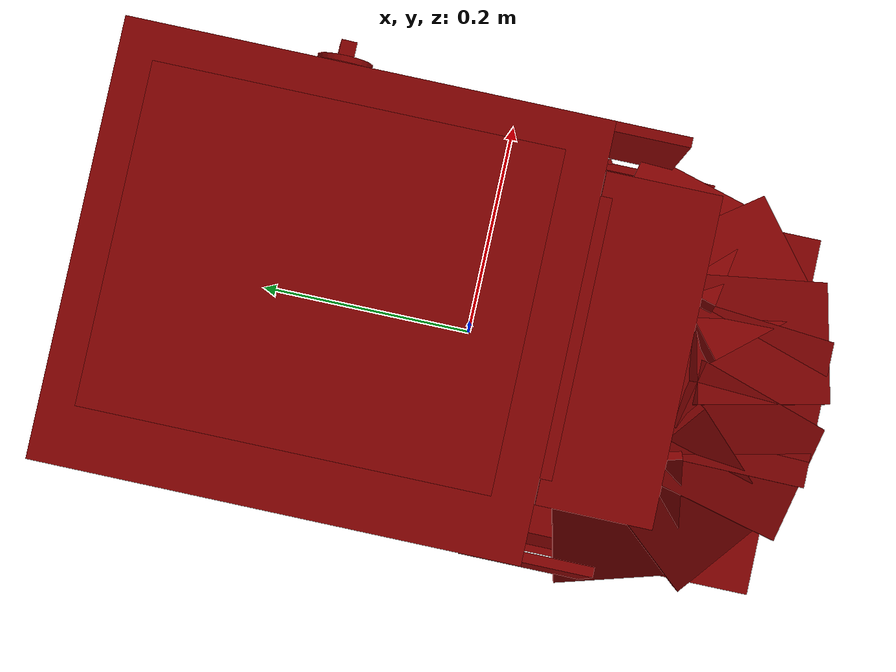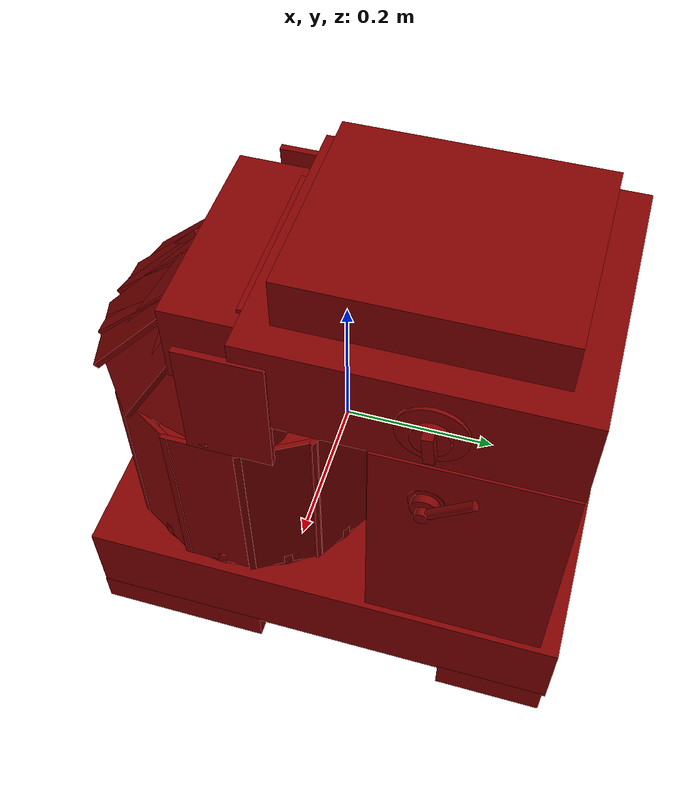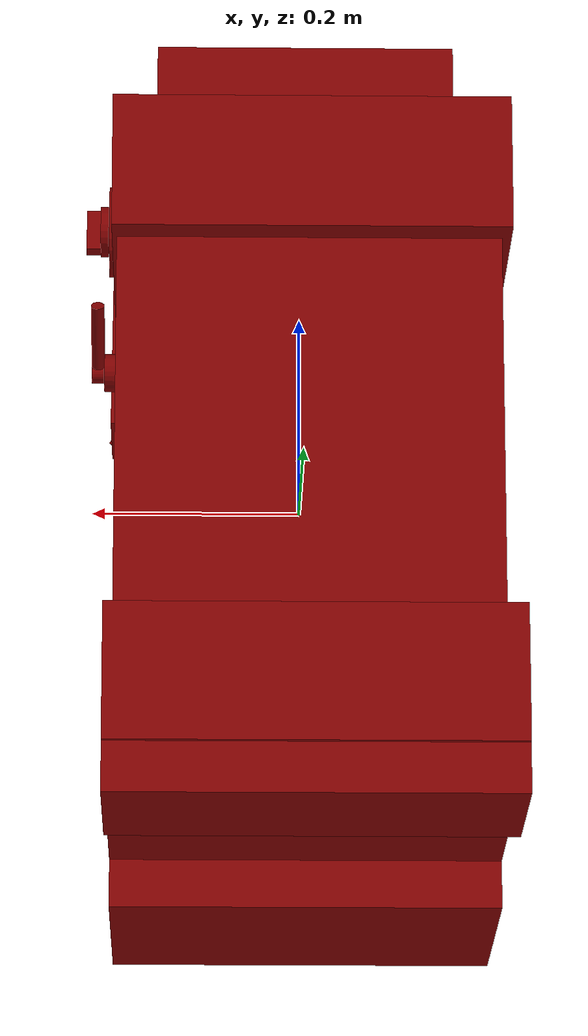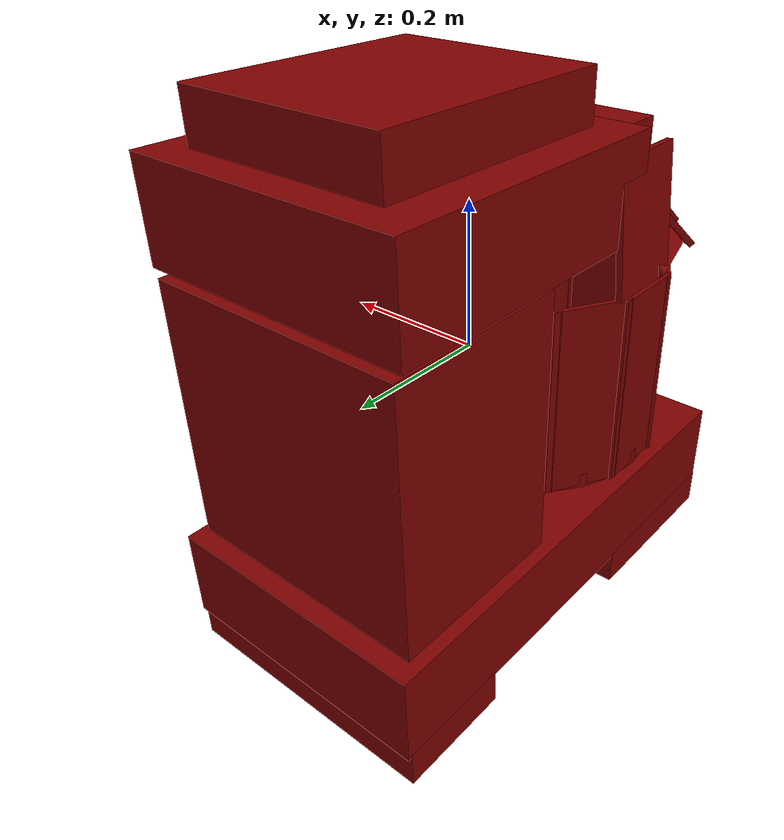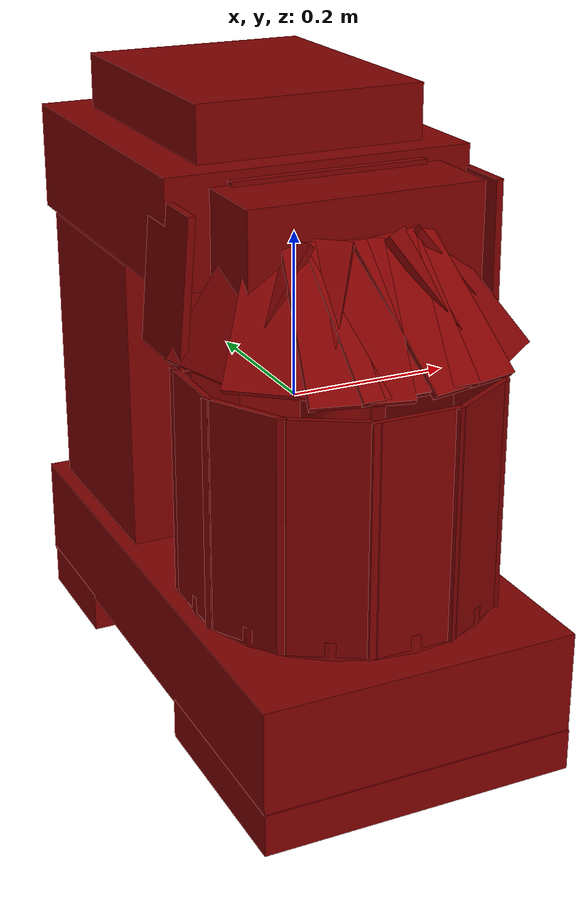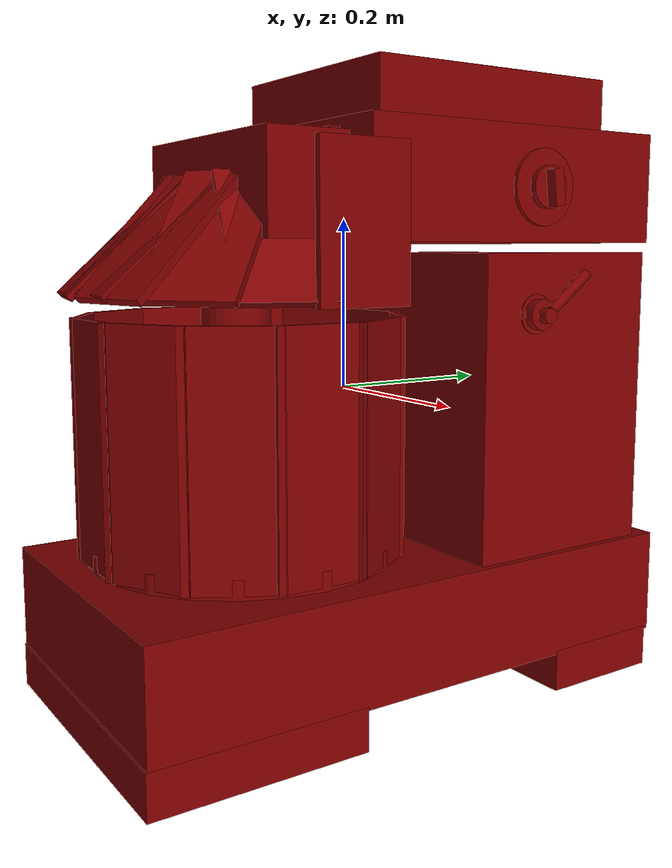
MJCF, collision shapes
<?xml version='1.0' encoding='UTF-8'?>
<mujoco model="model">
  <option timestep="0.002" gravity="0.0 0.0 -9.81"/>
  <compiler angle="radian"/>
  <asset>
    <mesh file="visuals/Blender001.obj" name="Blender001_vis"/>
    <mesh file="visuals/Body001.obj" name="Body001_vis"/>
    <mesh file="visuals/Container001.obj" name="Container001_vis"/>
    <mesh file="visuals/Konb001.obj" name="Konb001_vis"/>
    <mesh file="visuals/Lever001.obj" name="Lever001_vis"/>
    <mesh file="visuals/Lid001.obj" name="Lid001_vis"/>
    <texture file="visuals/T_BC001.png" name="Body001_material" type="2d"/>
    <material name="Body001_material" rgba="1 1 1 1.0" texture="Body001_material" shininess="0.5" specular="1"/>
    <texture file="visuals/T_BC001.png" name="Container001_material" type="2d"/>
    <material name="Container001_material" rgba="1 1 1 1.0" texture="Container001_material" shininess="0.5" specular="2"/>
    <texture file="visuals/T_BC001.png" name="Lever001_material" type="2d"/>
    <material name="Lever001_material" rgba="1 1 1 1.0" texture="Lever001_material" shininess="0.5" specular="0.3103448502657381"/>
    <texture file="visuals/T_BC001.png" name="Lid001_material" type="2d"/>
    <material name="Lid001_material" rgba="1 1 1 1.0" texture="Lid001_material" shininess="0.5" specular="2"/>
    <texture file="visuals/T_BC001.png" name="Blender001_material" type="2d"/>
    <material name="Blender001_material" rgba="1 1 1 1.0" texture="Blender001_material" shininess="0.5" specular="2"/>
    <texture file="visuals/T_BC001.png" name="Konb001_material" type="2d"/>
    <material name="Konb001_material" rgba="1 1 1 1.0" texture="Konb001_material" shininess="0.5" specular="0.3103448502657381"/>
  </asset>
  <default>
    <default class="visual">
      <geom conaffinity="0" contype="0" group="1" type="mesh"/>
    </default>
    <default class="collision">
      <geom group="0" rgba="0.5 0 0 0.5"/>
    </default>
    <default class="spawn">
      <geom group="0" rgba="1 1 1 0.5" contype="0" conaffinity="0"/>
      <site group="0" rgba="1 1 1 0.5"/>
    </default>
    <default class="region">
      <geom group="1" conaffinity="0" contype="0" rgba="0 1 0 0"/>
    </default>
  </default>
  <worldbody>
    <body>
      <body name="object">
        <geom mesh="Body001_vis" type="mesh" solimp="0.998 0.998 0.001" solref="0.001 1" friction="0.95 0.3 0.1" class="visual" material="Body001_material"/>
        <geom class="collision" type="box" pos="-0.002671 0.200073 -0.016867" size="0.1764032542705536 0.12497478723526001 0.17823748290538788" quat="1.0 0.0 0.0 0.0" density="1000.0"/>
        <geom class="collision" type="box" pos="-0.007459 0.005872 -0.258088" size="0.18950051069259644 0.3452455997467041 0.06353165209293365" quat="1.0 0.0 0.0 0.0" density="1000.0"/>
        <geom class="collision" type="box" pos="-0.007459 -0.214374 -0.342852" size="0.1895015686750412 0.12654121220111847 0.02537618577480316" quat="1.0 0.0 0.0 0.0" density="1000.0"/>
        <geom class="collision" type="box" pos="-0.007459 0.268037 -0.342736" size="0.1895015686750412 0.07797621935606003 0.02537618577480316" quat="1.0 0.0 0.0 0.0" density="1000.0"/>
        <geom class="collision" type="cylinder" pos="0.167860 0.148087 0.091847" size="0.022957801818847656 0.007240905426442623" quat="0.7071068286895752 -0.0 0.7071067690849304 0.0" density="1000.0"/>
        <body name="Container001">
          <joint axis="0.0 0.0 1.0" pos="-0.006700 -0.145994 -0.054640" limited="true" name="Container001_joint" range="0.0 0.1" type="slide" damping="1" frictionloss="1" armature=".01" stiffness="0.05"/>
          <geom mesh="Container001_vis" type="mesh" solimp="0.998 0.998 0.001" solref="0.001 1" friction="0.95 0.3 0.1" class="visual" material="Container001_material"/>
          <geom class="collision" type="cylinder" pos="-0.006700 -0.134893 -0.172188" size="0.1814662218093872 0.010760191828012466" quat="1.0 0.0 0.0 5.960464477539063e-08" density="1000.0"/>
          <geom class="collision" type="box" pos="-0.003157 0.042430 -0.043359" size="0.05319305509328842 0.0033536956179887056 0.13530996441841125" quat="1.0 0.0 0.0 0.0" density="1000.0"/>
          <geom class="collision" type="box" pos="0.085029 0.016902 -0.043359" size="0.05319305881857872 0.0033536935225129128 0.13530996441841125" quat="0.9659258127212524 0.0 0.0 -0.2588191628456116" density="1000.0"/>
          <geom class="collision" type="box" pos="0.148637 -0.049299 -0.043359" size="0.05319305881857872 0.003353693289682269 0.13530994951725006" quat="0.866025447845459 0.0 0.0 -0.4999999701976776" density="1000.0"/>
          <geom class="collision" type="box" pos="0.170623 -0.138436 -0.043359" size="0.003353703301399946 0.05319299176335335 0.13530996441841125" quat="1.0 0.0 0.0 0.0" density="1000.0"/>
          <geom class="collision" type="box" pos="0.145094 -0.226622 -0.043359" size="0.05319305881857872 0.0033536935225129128 0.13530996441841125" quat="0.49999988079071045 0.0 0.0 -0.8660255074501038" density="1000.0"/>
          <geom class="collision" type="box" pos="0.078893 -0.290230 -0.043359" size="0.05319306254386902 0.003353693289682269 0.13530996441841125" quat="0.2588190734386444 0.0 0.0 -0.9659258127212524" density="1000.0"/>
          <geom class="collision" type="box" pos="-0.010243 -0.312216 -0.043359" size="0.05319305509328842 0.003353709354996681 0.13530996441841125" quat="1.0 0.0 0.0 0.0" density="1000.0"/>
          <geom class="collision" type="box" pos="-0.098430 -0.286687 -0.043359" size="0.05319306254386902 0.0033536935225129128 0.13530996441841125" quat="0.2588190734386444 0.0 0.0 0.9659258127212524" density="1000.0"/>
          <geom class="collision" type="box" pos="-0.162038 -0.220486 -0.043359" size="0.05319305509328842 0.003353693289682269 0.13530996441841125" quat="0.5000000596046448 0.0 0.0 0.8660253882408142" density="1000.0"/>
          <geom class="collision" type="box" pos="-0.184023 -0.131350 -0.043359" size="0.003353716107085347 0.05319303646683693 0.13530996441841125" quat="1.0 0.0 0.0 0.0" density="1000.0"/>
          <geom class="collision" type="box" pos="-0.158495 -0.043163 -0.043359" size="0.05319305881857872 0.0033536935225129128 0.13530996441841125" quat="0.8660256266593933 0.0 0.0 0.49999964237213135" density="1000.0"/>
          <geom class="collision" type="box" pos="-0.092294 0.020445 -0.043359" size="0.05319305509328842 0.003353693289682269 0.13530996441841125" quat="0.9659258723258972 0.0 0.0 0.25881892442703247" density="1000.0"/>
        </body>
        <body name="Lever001">
          <joint axis="-1.0 0.0 0.0" pos="0.182530 0.149109 0.091107" limited="true" name="Lever001_joint" range="0.0 1.2566370614359172" type="hinge" damping="1" frictionloss="1" armature=".01" stiffness="0.0005"/>
          <geom mesh="Lever001_vis" type="mesh" solimp="0.998 0.998 0.001" solref="0.001 1" friction="0.95 0.3 0.1" class="visual" material="Lever001_material"/>
          <geom class="collision" type="cylinder" pos="0.192819 0.181370 0.116686" size="0.006224953569471836 0.0336981862783432" quat="0.896519124507904 -0.4430050551891327 2.6802243979773266e-08 -5.3240494679585026e-08" density="1000.0"/>
          <geom class="collision" type="cylinder" pos="0.193148 0.147999 0.091033" size="0.008919178508222103 0.0055654654279351234" quat="0.6339347958564758 -0.31325194239616394 -0.633934736251831 0.313251793384552" density="1000.0"/>
          <geom class="collision" type="cylinder" pos="0.181272 0.148087 0.091847" size="0.017771020531654358 0.005604991223663092" quat="0.7071068286895752 -0.0 0.7071067690849304 0.0" density="1000.0"/>
        </body>
        <body name="Lid001">
          <joint axis="-1.0 0.0 0.0" pos="0.003916 0.322977 0.171758" limited="true" name="Lid001_joint" range="0.0 1.5707963267948966" type="hinge" damping="1" frictionloss="1" armature=".01" stiffness="0.05"/>
          <geom mesh="Lid001_vis" type="mesh" solimp="0.998 0.998 0.001" solref="0.001 1" friction="0.95 0.3 0.1" class="visual" material="Lid001_material"/>
          <geom class="collision" type="box" pos="-0.005637 0.121329 0.237435" size="0.184238001704216 0.20407572388648987 0.06432920694351196" quat="1.0 0.0 0.0 0.0" density="1000.0"/>
          <geom class="collision" type="box" pos="-0.000110 -0.132796 0.231343" size="0.13936132192611694 0.04869908466935158 0.05530465021729469" quat="1.0 0.0 0.0 0.0" density="1000.0"/>
          <geom class="collision" type="box" pos="-0.000110 0.118885 0.315118" size="0.13787944614887238 0.16501151025295258 0.05209331586956978" quat="1.0 0.0 0.0 0.0" density="1000.0"/>
          <geom class="collision" type="box" pos="-0.000110 -0.083651 0.277629" size="0.11760880798101425 0.009555584751069546 0.014604005962610245" quat="1.0 0.0 0.0 0.0" density="1000.0"/>
          <geom class="collision" type="box" pos="-0.023869 -0.250660 0.177958" size="0.05469752103090286 0.0042932783253490925 0.0926520973443985" quat="0.9129106998443604 -0.4081593453884125 3.326717745721908e-08 1.4873649867297445e-08" density="1000.0"/>
          <geom class="collision" type="box" pos="-0.110678 -0.216964 0.181108" size="0.05469752103090286 0.00429327879101038 0.08732059597969055" quat="0.8775176405906677 -0.345663458108902 0.12181942909955978 -0.3092564344406128" density="1000.0"/>
          <geom class="collision" type="box" pos="-0.190229 -0.088317 0.193110" size="0.05469752103090286 0.00429327879101038 0.08266056329011917" quat="0.7065261006355286 -0.02865460142493248 0.028654610738158226 -0.7065258026123047" density="1000.0"/>
          <geom class="collision" type="box" pos="-0.139639 -0.158842 0.180499" size="0.05469752103090286 0.00429327879101038 0.08321232348680496" quat="0.5672957897186279 0.2008899748325348 0.2665899991989136 0.752826988697052" density="1000.0"/>
          <geom class="collision" type="box" pos="-0.061384 -0.250660 0.177958" size="0.05469752475619316 0.0042932783253490925 0.0926520973443985" quat="0.9145877361297607 -0.3882194459438324 0.044231995940208435 -0.10420416295528412" density="1000.0"/>
          <geom class="collision" type="box" pos="0.037335 -0.250660 0.177958" size="0.05469753220677376 0.0042932783253490925 0.0926520973443985" quat="0.38821929693222046 0.9145877957344055 0.10420418530702591 0.04423201084136963" density="1000.0"/>
          <geom class="collision" type="box" pos="0.117142 -0.159287 0.178505" size="0.05469752103090286 0.0042932783253490925 0.08577822893857956" quat="0.20089010894298553 -0.5672956109046936 0.752826988697052 -0.26659026741981506" density="1000.0"/>
          <geom class="collision" type="box" pos="0.179344 -0.093894 0.191208" size="0.05469752103090286 0.00429327879101038 0.08453971147537231" quat="0.0035106476861983538 0.7070980668067932 0.7070980668067932 0.0035105894785374403" density="1000.0"/>
          <geom class="collision" type="box" pos="0.087811 -0.218432 0.179088" size="0.05469752103090286 0.0042932783253490925 0.09008330851793289" quat="0.3456631302833557 0.8775177001953125 0.3092566430568695 0.1218193769454956" density="1000.0"/>
          <geom class="collision" type="box" pos="-0.000180 -0.250660 0.177958" size="0.05469752103090286 0.0042932783253490925 0.0926520973443985" quat="0.40815937519073486 0.9129106998443604 7.852231753702199e-09 -1.7562717502528358e-08" density="1000.0"/>
          <geom class="collision" type="cylinder" pos="0.180216 0.148849 0.233937" size="0.04312162473797798 0.003263219492509961" quat="0.7071068286895752 -0.0 0.7071067690849304 0.0" density="1000.0"/>
          <body name="Blender001">
            <joint axis="0.0 0.0 1.0" pos="-0.014854 -0.137357 0.168448" limited="false" name="Blender001_joint" range="0 360" type="hinge" damping="1" frictionloss="1" armature=".01" stiffness="0.05"/>
            <geom mesh="Blender001_vis" type="mesh" solimp="0.998 0.998 0.001" solref="0.001 1" friction="0.95 0.3 0.1" class="visual" material="Blender001_material"/>
            <geom class="collision" type="cylinder" pos="-0.014854 -0.137357 0.025271" size="0.03977133706212044 0.12904568016529083" quat="1.0 0.0 0.0 5.960464477539063e-08" density="1000.0"/>
            <geom class="collision" type="cylinder" pos="-0.014854 -0.137357 0.157530" size="0.04861937835812569 0.011234770528972149" quat="1.0 0.0 0.0 5.960464477539063e-08" density="1000.0"/>
          </body>
          <body name="Konb001">
            <joint axis="-1.0 0.0 0.0" pos="0.192056 0.148815 0.233582" limited="true" name="Konb001_joint" range="0.0 3.141592653589793" type="hinge" damping="1" frictionloss="1" armature=".01" stiffness="0.0005"/>
            <geom mesh="Konb001_vis" type="mesh" solimp="0.998 0.998 0.001" solref="0.001 1" friction="0.95 0.3 0.1" class="visual" material="Konb001_material"/>
            <geom class="collision" type="cylinder" pos="0.188190 0.149206 0.233844" size="0.023875655606389046 0.0037164839450269938" quat="0.2503162920475006 -0.6613181233406067 0.2503167986869812 -0.6613180637359619" density="1000.0"/>
            <geom class="collision" type="box" pos="0.198501 0.149735 0.232932" size="0.006722669582813978 0.006722669582813978 0.020335135981440544" quat="0.9984014630317688 0.05652029812335968 3.368872292242031e-09 5.9509360994525196e-08" density="1000.0"/>
          </body>
        </body>
        <geom class="region" name="reg_main" type="box" pos="-0.0064680000000000015 0.0 0.0" size="0.190088 0.345 0.365"/>
      </body>
    </body>
  </worldbody>
  <actuator>
    <motor name="Container001_joint_actuator" joint="Container001_joint" gear="100"/>
    <motor name="Lever001_joint_actuator" joint="Lever001_joint" gear="10"/>
    <motor name="Lid001_joint_actuator" joint="Lid001_joint" gear="100"/>
    <motor name="Blender001_joint_actuator" joint="Blender001_joint" gear="20"/>
    <motor name="Konb001_joint_actuator" joint="Konb001_joint" gear="10"/>
  </actuator>
</mujoco>
